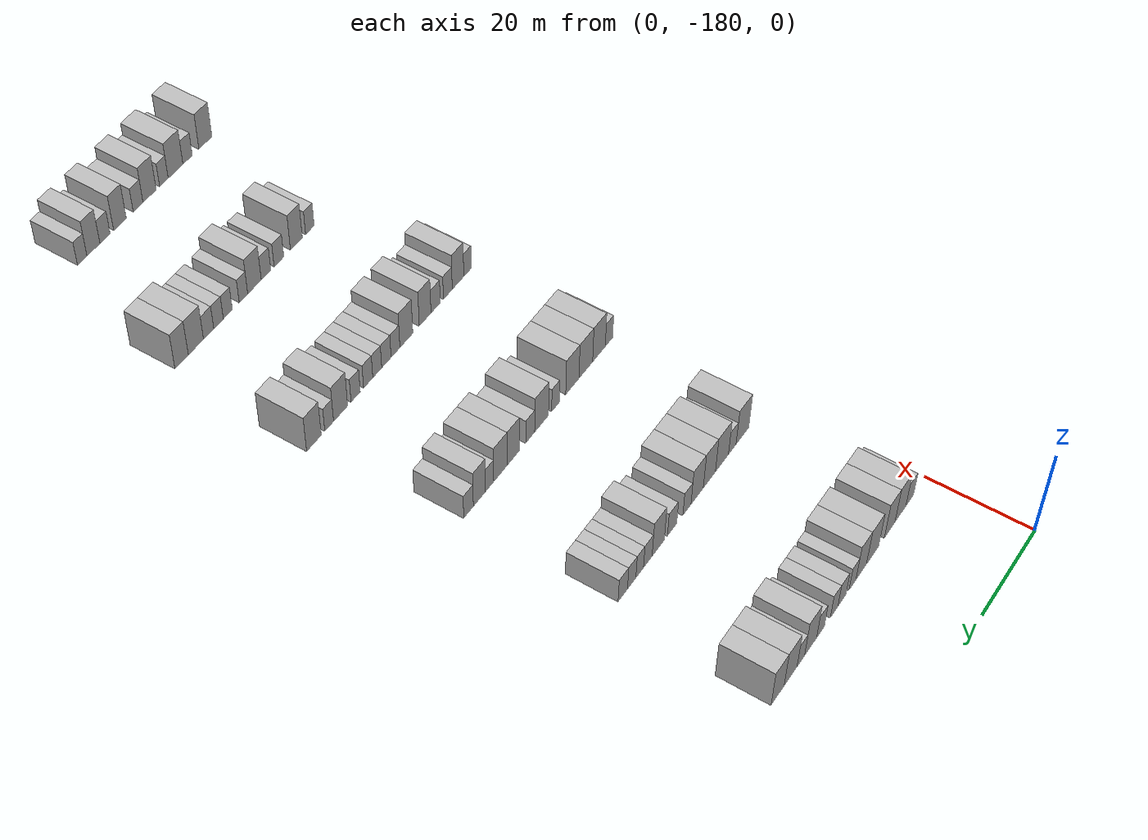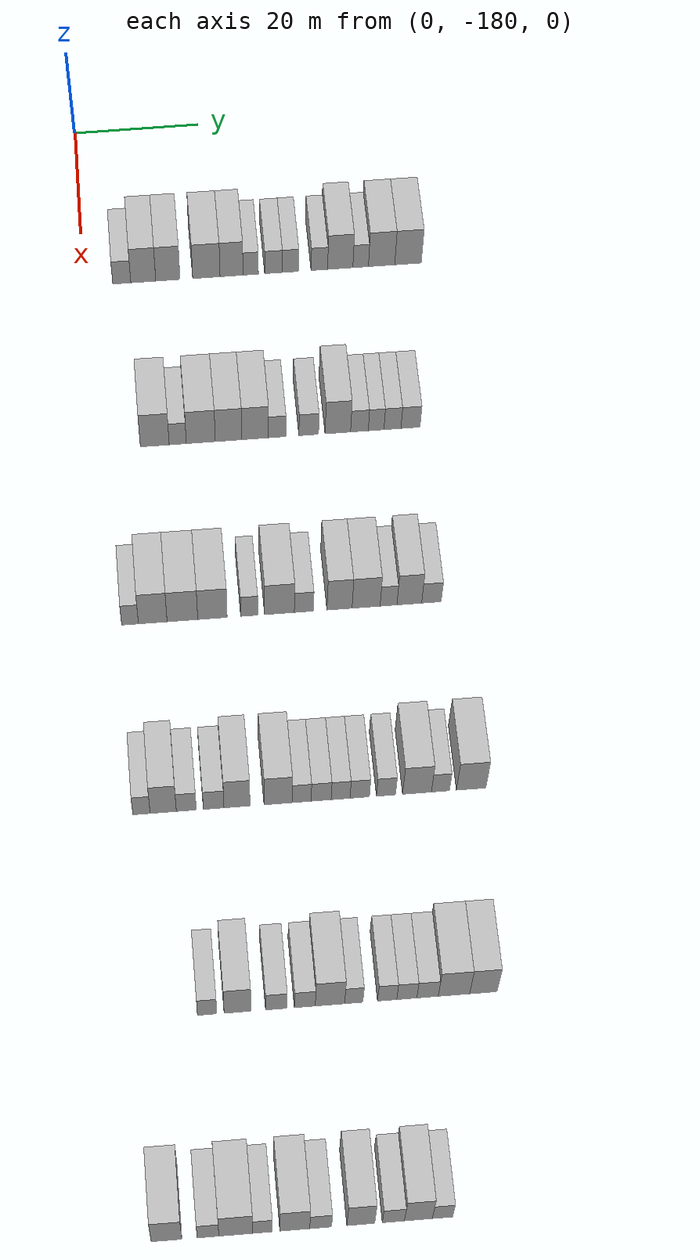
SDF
<sdf version="1.6">
 <world name="default">
  <model name="building_75">
   <static>1</static>
   <pose>25.0000 -174.0689 0 0.000000 0.000000 0.000000</pose>
   <link name="link">
    <pose>0 0 3.00 0 0 0</pose>
    <collision name="collision"><geometry><box><size>10.0000 2.8303 6.0000</size></box></geometry></collision>
    <visual name="visual">
     <cast_shadows>0</cast_shadows>
     <geometry><box><size>10.0000 2.8303 6.0000</size></box></geometry>
     <material>
      <script>
       <uri>model://HANNAS_wall/materials/scripts</uri>
       <uri>model://HANNAS_wall/materials/textures</uri>
       <name>vrc/HANNAS_wall</name>
      </script>
     </material>
    </visual>
   </link>
  </model>
  <model name="building_76">
   <static>1</static>
   <pose>25.0000 -170.6908 0 0.000000 0.000000 0.000000</pose>
   <link name="link">
    <pose>0 0 4.50 0 0 0</pose>
    <collision name="collision"><geometry><box><size>10.0000 3.9259 9.0000</size></box></geometry></collision>
    <visual name="visual">
     <cast_shadows>0</cast_shadows>
     <geometry><box><size>10.0000 3.9259 9.0000</size></box></geometry>
     <material>
      <script>
       <uri>model://HANNAS_wall/materials/scripts</uri>
       <uri>model://HANNAS_wall/materials/textures</uri>
       <name>vrc/HANNAS_wall</name>
      </script>
     </material>
    </visual>
   </link>
  </model>
  <model name="building_77">
   <static>1</static>
   <pose>25.0000 -166.8234 0 0.000000 0.000000 0.000000</pose>
   <link name="link">
    <pose>0 0 4.50 0 0 0</pose>
    <collision name="collision"><geometry><box><size>10.0000 3.8088 9.0000</size></box></geometry></collision>
    <visual name="visual">
     <cast_shadows>0</cast_shadows>
     <geometry><box><size>10.0000 3.8088 9.0000</size></box></geometry>
     <material>
      <script>
       <uri>model://HANNAS_wall/materials/scripts</uri>
       <uri>model://HANNAS_wall/materials/textures</uri>
       <name>vrc/HANNAS_wall</name>
      </script>
     </material>
    </visual>
   </link>
  </model>
  <model name="building_78">
   <static>1</static>
   <pose>25.0000 -160.7674 0 0.000000 0.000000 0.000000</pose>
   <link name="link">
    <pose>0 0 4.50 0 0 0</pose>
    <collision name="collision"><geometry><box><size>10.0000 4.3032 9.0000</size></box></geometry></collision>
    <visual name="visual">
     <cast_shadows>0</cast_shadows>
     <geometry><box><size>10.0000 4.3032 9.0000</size></box></geometry>
     <material>
      <script>
       <uri>model://HANNAS_wall/materials/scripts</uri>
       <uri>model://HANNAS_wall/materials/textures</uri>
       <name>vrc/HANNAS_wall</name>
      </script>
     </material>
    </visual>
   </link>
  </model>
  <model name="building_79">
   <static>1</static>
   <pose>25.0000 -156.8039 0 0.000000 0.000000 0.000000</pose>
   <link name="link">
    <pose>0 0 4.50 0 0 0</pose>
    <collision name="collision"><geometry><box><size>10.0000 3.6237 9.0000</size></box></geometry></collision>
    <visual name="visual">
     <cast_shadows>0</cast_shadows>
     <geometry><box><size>10.0000 3.6237 9.0000</size></box></geometry>
     <material>
      <script>
       <uri>model://HANNAS_wall/materials/scripts</uri>
       <uri>model://HANNAS_wall/materials/textures</uri>
       <name>vrc/HANNAS_wall</name>
      </script>
     </material>
    </visual>
   </link>
  </model>
  <model name="building_80">
   <static>1</static>
   <pose>25.0000 -153.7804 0 0.000000 0.000000 0.000000</pose>
   <link name="link">
    <pose>0 0 3.00 0 0 0</pose>
    <collision name="collision"><geometry><box><size>10.0000 2.4234 6.0000</size></box></geometry></collision>
    <visual name="visual">
     <cast_shadows>0</cast_shadows>
     <geometry><box><size>10.0000 2.4234 6.0000</size></box></geometry>
     <material>
      <script>
       <uri>model://HANNAS_wall/materials/scripts</uri>
       <uri>model://HANNAS_wall/materials/textures</uri>
       <name>vrc/HANNAS_wall</name>
      </script>
     </material>
    </visual>
   </link>
  </model>
  <model name="building_81">
   <static>1</static>
   <pose>25.0000 -150.1836 0 0.000000 0.000000 0.000000</pose>
   <link name="link">
    <pose>0 0 3.00 0 0 0</pose>
    <collision name="collision"><geometry><box><size>10.0000 2.7703 6.0000</size></box></geometry></collision>
    <visual name="visual">
     <cast_shadows>0</cast_shadows>
     <geometry><box><size>10.0000 2.7703 6.0000</size></box></geometry>
     <material>
      <script>
       <uri>model://HANNAS_wall/materials/scripts</uri>
       <uri>model://HANNAS_wall/materials/textures</uri>
       <name>vrc/HANNAS_wall</name>
      </script>
     </material>
    </visual>
   </link>
  </model>
  <model name="building_82">
   <static>1</static>
   <pose>25.0000 -147.5221 0 0.000000 0.000000 0.000000</pose>
   <link name="link">
    <pose>0 0 3.00 0 0 0</pose>
    <collision name="collision"><geometry><box><size>10.0000 2.5527 6.0000</size></box></geometry></collision>
    <visual name="visual">
     <cast_shadows>0</cast_shadows>
     <geometry><box><size>10.0000 2.5527 6.0000</size></box></geometry>
     <material>
      <script>
       <uri>model://HANNAS_wall/materials/scripts</uri>
       <uri>model://HANNAS_wall/materials/textures</uri>
       <name>vrc/HANNAS_wall</name>
      </script>
     </material>
    </visual>
   </link>
  </model>
  <model name="building_83">
   <static>1</static>
   <pose>25.0000 -142.9485 0 0.000000 0.000000 0.000000</pose>
   <link name="link">
    <pose>0 0 3.00 0 0 0</pose>
    <collision name="collision"><geometry><box><size>10.0000 2.5945 6.0000</size></box></geometry></collision>
    <visual name="visual">
     <cast_shadows>0</cast_shadows>
     <geometry><box><size>10.0000 2.5945 6.0000</size></box></geometry>
     <material>
      <script>
       <uri>model://HANNAS_wall/materials/scripts</uri>
       <uri>model://HANNAS_wall/materials/textures</uri>
       <name>vrc/HANNAS_wall</name>
      </script>
     </material>
    </visual>
   </link>
  </model>
  <model name="building_84">
   <static>1</static>
   <pose>25.0000 -139.6489 0 0.000000 0.000000 0.000000</pose>
   <link name="link">
    <pose>0 0 4.50 0 0 0</pose>
    <collision name="collision"><geometry><box><size>10.0000 4.0047 9.0000</size></box></geometry></collision>
    <visual name="visual">
     <cast_shadows>0</cast_shadows>
     <geometry><box><size>10.0000 4.0047 9.0000</size></box></geometry>
     <material>
      <script>
       <uri>model://HANNAS_wall/materials/scripts</uri>
       <uri>model://HANNAS_wall/materials/textures</uri>
       <name>vrc/HANNAS_wall</name>
      </script>
     </material>
    </visual>
   </link>
  </model>
  <model name="building_85">
   <static>1</static>
   <pose>25.0000 -136.4168 0 0.000000 0.000000 0.000000</pose>
   <link name="link">
    <pose>0 0 3.00 0 0 0</pose>
    <collision name="collision"><geometry><box><size>10.0000 2.4595 6.0000</size></box></geometry></collision>
    <visual name="visual">
     <cast_shadows>0</cast_shadows>
     <geometry><box><size>10.0000 2.4595 6.0000</size></box></geometry>
     <material>
      <script>
       <uri>model://HANNAS_wall/materials/scripts</uri>
       <uri>model://HANNAS_wall/materials/textures</uri>
       <name>vrc/HANNAS_wall</name>
      </script>
     </material>
    </visual>
   </link>
  </model>
  <model name="building_86">
   <static>1</static>
   <pose>25.0000 -133.1045 0 0.000000 0.000000 0.000000</pose>
   <link name="link">
    <pose>0 0 4.50 0 0 0</pose>
    <collision name="collision"><geometry><box><size>10.0000 4.1651 9.0000</size></box></geometry></collision>
    <visual name="visual">
     <cast_shadows>0</cast_shadows>
     <geometry><box><size>10.0000 4.1651 9.0000</size></box></geometry>
     <material>
      <script>
       <uri>model://HANNAS_wall/materials/scripts</uri>
       <uri>model://HANNAS_wall/materials/textures</uri>
       <name>vrc/HANNAS_wall</name>
      </script>
     </material>
    </visual>
   </link>
  </model>
  <model name="building_87">
   <static>1</static>
   <pose>25.0000 -128.9225 0 0.000000 0.000000 0.000000</pose>
   <link name="link">
    <pose>0 0 4.50 0 0 0</pose>
    <collision name="collision"><geometry><box><size>10.0000 4.1990 9.0000</size></box></geometry></collision>
    <visual name="visual">
     <cast_shadows>0</cast_shadows>
     <geometry><box><size>10.0000 4.1990 9.0000</size></box></geometry>
     <material>
      <script>
       <uri>model://HANNAS_wall/materials/scripts</uri>
       <uri>model://HANNAS_wall/materials/textures</uri>
       <name>vrc/HANNAS_wall</name>
      </script>
     </material>
    </visual>
   </link>
  </model>
  <model name="building_290">
   <static>1</static>
   <pose>55.0000 -170.7391 0 0.000000 0.000000 0.000000</pose>
   <link name="link">
    <pose>0 0 4.50 0 0 0</pose>
    <collision name="collision"><geometry><box><size>10.0000 4.3641 9.0000</size></box></geometry></collision>
    <visual name="visual">
     <cast_shadows>0</cast_shadows>
     <geometry><box><size>10.0000 4.3641 9.0000</size></box></geometry>
     <material>
      <script>
       <uri>model://HANNAS_wall/materials/scripts</uri>
       <uri>model://HANNAS_wall/materials/textures</uri>
       <name>vrc/HANNAS_wall</name>
      </script>
     </material>
    </visual>
   </link>
  </model>
  <model name="building_291">
   <static>1</static>
   <pose>55.0000 -167.2575 0 0.000000 0.000000 0.000000</pose>
   <link name="link">
    <pose>0 0 3.00 0 0 0</pose>
    <collision name="collision"><geometry><box><size>10.0000 2.5992 6.0000</size></box></geometry></collision>
    <visual name="visual">
     <cast_shadows>0</cast_shadows>
     <geometry><box><size>10.0000 2.5992 6.0000</size></box></geometry>
     <material>
      <script>
       <uri>model://HANNAS_wall/materials/scripts</uri>
       <uri>model://HANNAS_wall/materials/textures</uri>
       <name>vrc/HANNAS_wall</name>
      </script>
     </material>
    </visual>
   </link>
  </model>
  <model name="building_292">
   <static>1</static>
   <pose>55.0000 -163.7543 0 0.000000 0.000000 0.000000</pose>
   <link name="link">
    <pose>0 0 4.50 0 0 0</pose>
    <collision name="collision"><geometry><box><size>10.0000 4.4072 9.0000</size></box></geometry></collision>
    <visual name="visual">
     <cast_shadows>0</cast_shadows>
     <geometry><box><size>10.0000 4.4072 9.0000</size></box></geometry>
     <material>
      <script>
       <uri>model://HANNAS_wall/materials/scripts</uri>
       <uri>model://HANNAS_wall/materials/textures</uri>
       <name>vrc/HANNAS_wall</name>
      </script>
     </material>
    </visual>
   </link>
  </model>
  <model name="building_293">
   <static>1</static>
   <pose>55.0000 -159.5313 0 0.000000 0.000000 0.000000</pose>
   <link name="link">
    <pose>0 0 4.50 0 0 0</pose>
    <collision name="collision"><geometry><box><size>10.0000 4.0389 9.0000</size></box></geometry></collision>
    <visual name="visual">
     <cast_shadows>0</cast_shadows>
     <geometry><box><size>10.0000 4.0389 9.0000</size></box></geometry>
     <material>
      <script>
       <uri>model://HANNAS_wall/materials/scripts</uri>
       <uri>model://HANNAS_wall/materials/textures</uri>
       <name>vrc/HANNAS_wall</name>
      </script>
     </material>
    </visual>
   </link>
  </model>
  <model name="building_294">
   <static>1</static>
   <pose>55.0000 -155.4770 0 0.000000 0.000000 0.000000</pose>
   <link name="link">
    <pose>0 0 4.50 0 0 0</pose>
    <collision name="collision"><geometry><box><size>10.0000 4.0696 9.0000</size></box></geometry></collision>
    <visual name="visual">
     <cast_shadows>0</cast_shadows>
     <geometry><box><size>10.0000 4.0696 9.0000</size></box></geometry>
     <material>
      <script>
       <uri>model://HANNAS_wall/materials/scripts</uri>
       <uri>model://HANNAS_wall/materials/textures</uri>
       <name>vrc/HANNAS_wall</name>
      </script>
     </material>
    </visual>
   </link>
  </model>
  <model name="building_295">
   <static>1</static>
   <pose>55.0000 -152.1256 0 0.000000 0.000000 0.000000</pose>
   <link name="link">
    <pose>0 0 3.00 0 0 0</pose>
    <collision name="collision"><geometry><box><size>10.0000 2.6332 6.0000</size></box></geometry></collision>
    <visual name="visual">
     <cast_shadows>0</cast_shadows>
     <geometry><box><size>10.0000 2.6332 6.0000</size></box></geometry>
     <material>
      <script>
       <uri>model://HANNAS_wall/materials/scripts</uri>
       <uri>model://HANNAS_wall/materials/textures</uri>
       <name>vrc/HANNAS_wall</name>
      </script>
     </material>
    </visual>
   </link>
  </model>
  <model name="building_296">
   <static>1</static>
   <pose>55.0000 -147.3127 0 0.000000 0.000000 0.000000</pose>
   <link name="link">
    <pose>0 0 3.00 0 0 0</pose>
    <collision name="collision"><geometry><box><size>10.0000 2.9927 6.0000</size></box></geometry></collision>
    <visual name="visual">
     <cast_shadows>0</cast_shadows>
     <geometry><box><size>10.0000 2.9927 6.0000</size></box></geometry>
     <material>
      <script>
       <uri>model://HANNAS_wall/materials/scripts</uri>
       <uri>model://HANNAS_wall/materials/textures</uri>
       <name>vrc/HANNAS_wall</name>
      </script>
     </material>
    </visual>
   </link>
  </model>
  <model name="building_297">
   <static>1</static>
   <pose>55.0000 -142.8685 0 0.000000 0.000000 0.000000</pose>
   <link name="link">
    <pose>0 0 4.50 0 0 0</pose>
    <collision name="collision"><geometry><box><size>10.0000 3.8957 9.0000</size></box></geometry></collision>
    <visual name="visual">
     <cast_shadows>0</cast_shadows>
     <geometry><box><size>10.0000 3.8957 9.0000</size></box></geometry>
     <material>
      <script>
       <uri>model://HANNAS_wall/materials/scripts</uri>
       <uri>model://HANNAS_wall/materials/textures</uri>
       <name>vrc/HANNAS_wall</name>
      </script>
     </material>
    </visual>
   </link>
  </model>
  <model name="building_298">
   <static>1</static>
   <pose>55.0000 -139.5719 0 0.000000 0.000000 0.000000</pose>
   <link name="link">
    <pose>0 0 3.00 0 0 0</pose>
    <collision name="collision"><geometry><box><size>10.0000 2.6973 6.0000</size></box></geometry></collision>
    <visual name="visual">
     <cast_shadows>0</cast_shadows>
     <geometry><box><size>10.0000 2.6973 6.0000</size></box></geometry>
     <material>
      <script>
       <uri>model://HANNAS_wall/materials/scripts</uri>
       <uri>model://HANNAS_wall/materials/textures</uri>
       <name>vrc/HANNAS_wall</name>
      </script>
     </material>
    </visual>
   </link>
  </model>
  <model name="building_299">
   <static>1</static>
   <pose>55.0000 -137.0229 0 0.000000 0.000000 0.000000</pose>
   <link name="link">
    <pose>0 0 3.00 0 0 0</pose>
    <collision name="collision"><geometry><box><size>10.0000 2.4008 6.0000</size></box></geometry></collision>
    <visual name="visual">
     <cast_shadows>0</cast_shadows>
     <geometry><box><size>10.0000 2.4008 6.0000</size></box></geometry>
     <material>
      <script>
       <uri>model://HANNAS_wall/materials/scripts</uri>
       <uri>model://HANNAS_wall/materials/textures</uri>
       <name>vrc/HANNAS_wall</name>
      </script>
     </material>
    </visual>
   </link>
  </model>
  <model name="building_300">
   <static>1</static>
   <pose>55.0000 -134.5228 0 0.000000 0.000000 0.000000</pose>
   <link name="link">
    <pose>0 0 3.00 0 0 0</pose>
    <collision name="collision"><geometry><box><size>10.0000 2.5994 6.0000</size></box></geometry></collision>
    <visual name="visual">
     <cast_shadows>0</cast_shadows>
     <geometry><box><size>10.0000 2.5994 6.0000</size></box></geometry>
     <material>
      <script>
       <uri>model://HANNAS_wall/materials/scripts</uri>
       <uri>model://HANNAS_wall/materials/textures</uri>
       <name>vrc/HANNAS_wall</name>
      </script>
     </material>
    </visual>
   </link>
  </model>
  <model name="building_301">
   <static>1</static>
   <pose>55.0000 -131.7654 0 0.000000 0.000000 0.000000</pose>
   <link name="link">
    <pose>0 0 3.00 0 0 0</pose>
    <collision name="collision"><geometry><box><size>10.0000 2.9154 6.0000</size></box></geometry></collision>
    <visual name="visual">
     <cast_shadows>0</cast_shadows>
     <geometry><box><size>10.0000 2.9154 6.0000</size></box></geometry>
     <material>
      <script>
       <uri>model://HANNAS_wall/materials/scripts</uri>
       <uri>model://HANNAS_wall/materials/textures</uri>
       <name>vrc/HANNAS_wall</name>
      </script>
     </material>
    </visual>
   </link>
  </model>
  <model name="building_521">
   <static>1</static>
   <pose>85.0000 -176.2132 0 0.000000 0.000000 0.000000</pose>
   <link name="link">
    <pose>0 0 3.00 0 0 0</pose>
    <collision name="collision"><geometry><box><size>10.0000 2.4547 6.0000</size></box></geometry></collision>
    <visual name="visual">
     <cast_shadows>0</cast_shadows>
     <geometry><box><size>10.0000 2.4547 6.0000</size></box></geometry>
     <material>
      <script>
       <uri>model://HANNAS_wall/materials/scripts</uri>
       <uri>model://HANNAS_wall/materials/textures</uri>
       <name>vrc/HANNAS_wall</name>
      </script>
     </material>
    </visual>
   </link>
  </model>
  <model name="building_522">
   <static>1</static>
   <pose>85.0000 -172.8863 0 0.000000 0.000000 0.000000</pose>
   <link name="link">
    <pose>0 0 4.50 0 0 0</pose>
    <collision name="collision"><geometry><box><size>10.0000 4.1990 9.0000</size></box></geometry></collision>
    <visual name="visual">
     <cast_shadows>0</cast_shadows>
     <geometry><box><size>10.0000 4.1990 9.0000</size></box></geometry>
     <material>
      <script>
       <uri>model://HANNAS_wall/materials/scripts</uri>
       <uri>model://HANNAS_wall/materials/textures</uri>
       <name>vrc/HANNAS_wall</name>
      </script>
     </material>
    </visual>
   </link>
  </model>
  <model name="building_523">
   <static>1</static>
   <pose>85.0000 -168.5421 0 0.000000 0.000000 0.000000</pose>
   <link name="link">
    <pose>0 0 4.50 0 0 0</pose>
    <collision name="collision"><geometry><box><size>10.0000 4.4895 9.0000</size></box></geometry></collision>
    <visual name="visual">
     <cast_shadows>0</cast_shadows>
     <geometry><box><size>10.0000 4.4895 9.0000</size></box></geometry>
     <material>
      <script>
       <uri>model://HANNAS_wall/materials/scripts</uri>
       <uri>model://HANNAS_wall/materials/textures</uri>
       <name>vrc/HANNAS_wall</name>
      </script>
     </material>
    </visual>
   </link>
  </model>
  <model name="building_524">
   <static>1</static>
   <pose>85.0000 -164.1462 0 0.000000 0.000000 0.000000</pose>
   <link name="link">
    <pose>0 0 4.50 0 0 0</pose>
    <collision name="collision"><geometry><box><size>10.0000 4.3022 9.0000</size></box></geometry></collision>
    <visual name="visual">
     <cast_shadows>0</cast_shadows>
     <geometry><box><size>10.0000 4.3022 9.0000</size></box></geometry>
     <material>
      <script>
       <uri>model://HANNAS_wall/materials/scripts</uri>
       <uri>model://HANNAS_wall/materials/textures</uri>
       <name>vrc/HANNAS_wall</name>
      </script>
     </material>
    </visual>
   </link>
  </model>
  <model name="building_525">
   <static>1</static>
   <pose>85.0000 -158.7424 0 0.000000 0.000000 0.000000</pose>
   <link name="link">
    <pose>0 0 3.00 0 0 0</pose>
    <collision name="collision"><geometry><box><size>10.0000 2.5054 6.0000</size></box></geometry></collision>
    <visual name="visual">
     <cast_shadows>0</cast_shadows>
     <geometry><box><size>10.0000 2.5054 6.0000</size></box></geometry>
     <material>
      <script>
       <uri>model://HANNAS_wall/materials/scripts</uri>
       <uri>model://HANNAS_wall/materials/textures</uri>
       <name>vrc/HANNAS_wall</name>
      </script>
     </material>
    </visual>
   </link>
  </model>
  <model name="building_526">
   <static>1</static>
   <pose>85.0000 -154.3054 0 0.000000 0.000000 0.000000</pose>
   <link name="link">
    <pose>0 0 4.50 0 0 0</pose>
    <collision name="collision"><geometry><box><size>10.0000 4.3687 9.0000</size></box></geometry></collision>
    <visual name="visual">
     <cast_shadows>0</cast_shadows>
     <geometry><box><size>10.0000 4.3687 9.0000</size></box></geometry>
     <material>
      <script>
       <uri>model://HANNAS_wall/materials/scripts</uri>
       <uri>model://HANNAS_wall/materials/textures</uri>
       <name>vrc/HANNAS_wall</name>
      </script>
     </material>
    </visual>
   </link>
  </model>
  <model name="building_527">
   <static>1</static>
   <pose>85.0000 -150.7202 0 0.000000 0.000000 0.000000</pose>
   <link name="link">
    <pose>0 0 3.00 0 0 0</pose>
    <collision name="collision"><geometry><box><size>10.0000 2.8018 6.0000</size></box></geometry></collision>
    <visual name="visual">
     <cast_shadows>0</cast_shadows>
     <geometry><box><size>10.0000 2.8018 6.0000</size></box></geometry>
     <material>
      <script>
       <uri>model://HANNAS_wall/materials/scripts</uri>
       <uri>model://HANNAS_wall/materials/textures</uri>
       <name>vrc/HANNAS_wall</name>
      </script>
     </material>
    </visual>
   </link>
  </model>
  <model name="building_528">
   <static>1</static>
   <pose>85.0000 -145.4725 0 0.000000 0.000000 0.000000</pose>
   <link name="link">
    <pose>0 0 4.50 0 0 0</pose>
    <collision name="collision"><geometry><box><size>10.0000 3.6936 9.0000</size></box></geometry></collision>
    <visual name="visual">
     <cast_shadows>0</cast_shadows>
     <geometry><box><size>10.0000 3.6936 9.0000</size></box></geometry>
     <material>
      <script>
       <uri>model://HANNAS_wall/materials/scripts</uri>
       <uri>model://HANNAS_wall/materials/textures</uri>
       <name>vrc/HANNAS_wall</name>
      </script>
     </material>
    </visual>
   </link>
  </model>
  <model name="building_529">
   <static>1</static>
   <pose>85.0000 -141.5602 0 0.000000 0.000000 0.000000</pose>
   <link name="link">
    <pose>0 0 4.50 0 0 0</pose>
    <collision name="collision"><geometry><box><size>10.0000 4.1311 9.0000</size></box></geometry></collision>
    <visual name="visual">
     <cast_shadows>0</cast_shadows>
     <geometry><box><size>10.0000 4.1311 9.0000</size></box></geometry>
     <material>
      <script>
       <uri>model://HANNAS_wall/materials/scripts</uri>
       <uri>model://HANNAS_wall/materials/textures</uri>
       <name>vrc/HANNAS_wall</name>
      </script>
     </material>
    </visual>
   </link>
  </model>
  <model name="building_530">
   <static>1</static>
   <pose>85.0000 -138.2527 0 0.000000 0.000000 0.000000</pose>
   <link name="link">
    <pose>0 0 3.00 0 0 0</pose>
    <collision name="collision"><geometry><box><size>10.0000 2.4838 6.0000</size></box></geometry></collision>
    <visual name="visual">
     <cast_shadows>0</cast_shadows>
     <geometry><box><size>10.0000 2.4838 6.0000</size></box></geometry>
     <material>
      <script>
       <uri>model://HANNAS_wall/materials/scripts</uri>
       <uri>model://HANNAS_wall/materials/textures</uri>
       <name>vrc/HANNAS_wall</name>
      </script>
     </material>
    </visual>
   </link>
  </model>
  <model name="building_531">
   <static>1</static>
   <pose>85.0000 -135.1868 0 0.000000 0.000000 0.000000</pose>
   <link name="link">
    <pose>0 0 4.50 0 0 0</pose>
    <collision name="collision"><geometry><box><size>10.0000 3.6479 9.0000</size></box></geometry></collision>
    <visual name="visual">
     <cast_shadows>0</cast_shadows>
     <geometry><box><size>10.0000 3.6479 9.0000</size></box></geometry>
     <material>
      <script>
       <uri>model://HANNAS_wall/materials/scripts</uri>
       <uri>model://HANNAS_wall/materials/textures</uri>
       <name>vrc/HANNAS_wall</name>
      </script>
     </material>
    </visual>
   </link>
  </model>
  <model name="building_532">
   <static>1</static>
   <pose>85.0000 -131.9262 0 0.000000 0.000000 0.000000</pose>
   <link name="link">
    <pose>0 0 3.00 0 0 0</pose>
    <collision name="collision"><geometry><box><size>10.0000 2.8733 6.0000</size></box></geometry></collision>
    <visual name="visual">
     <cast_shadows>0</cast_shadows>
     <geometry><box><size>10.0000 2.8733 6.0000</size></box></geometry>
     <material>
      <script>
       <uri>model://HANNAS_wall/materials/scripts</uri>
       <uri>model://HANNAS_wall/materials/textures</uri>
       <name>vrc/HANNAS_wall</name>
      </script>
     </material>
    </visual>
   </link>
  </model>
  <model name="building_748">
   <static>1</static>
   <pose>115.0000 -176.3181 0 0.000000 0.000000 0.000000</pose>
   <link name="link">
    <pose>0 0 3.00 0 0 0</pose>
    <collision name="collision"><geometry><box><size>10.0000 2.4356 6.0000</size></box></geometry></collision>
    <visual name="visual">
     <cast_shadows>0</cast_shadows>
     <geometry><box><size>10.0000 2.4356 6.0000</size></box></geometry>
     <material>
      <script>
       <uri>model://HANNAS_wall/materials/scripts</uri>
       <uri>model://HANNAS_wall/materials/textures</uri>
       <name>vrc/HANNAS_wall</name>
      </script>
     </material>
    </visual>
   </link>
  </model>
  <model name="building_749">
   <static>1</static>
   <pose>115.0000 -173.2543 0 0.000000 0.000000 0.000000</pose>
   <link name="link">
    <pose>0 0 4.50 0 0 0</pose>
    <collision name="collision"><geometry><box><size>10.0000 3.6920 9.0000</size></box></geometry></collision>
    <visual name="visual">
     <cast_shadows>0</cast_shadows>
     <geometry><box><size>10.0000 3.6920 9.0000</size></box></geometry>
     <material>
      <script>
       <uri>model://HANNAS_wall/materials/scripts</uri>
       <uri>model://HANNAS_wall/materials/textures</uri>
       <name>vrc/HANNAS_wall</name>
      </script>
     </material>
    </visual>
   </link>
  </model>
  <model name="building_750">
   <static>1</static>
   <pose>115.0000 -170.0038 0 0.000000 0.000000 0.000000</pose>
   <link name="link">
    <pose>0 0 3.00 0 0 0</pose>
    <collision name="collision"><geometry><box><size>10.0000 2.8092 6.0000</size></box></geometry></collision>
    <visual name="visual">
     <cast_shadows>0</cast_shadows>
     <geometry><box><size>10.0000 2.8092 6.0000</size></box></geometry>
     <material>
      <script>
       <uri>model://HANNAS_wall/materials/scripts</uri>
       <uri>model://HANNAS_wall/materials/textures</uri>
       <name>vrc/HANNAS_wall</name>
      </script>
     </material>
    </visual>
   </link>
  </model>
  <model name="building_751">
   <static>1</static>
   <pose>115.0000 -166.1439 0 0.000000 0.000000 0.000000</pose>
   <link name="link">
    <pose>0 0 3.00 0 0 0</pose>
    <collision name="collision"><geometry><box><size>10.0000 2.9105 6.0000</size></box></geometry></collision>
    <visual name="visual">
     <cast_shadows>0</cast_shadows>
     <geometry><box><size>10.0000 2.9105 6.0000</size></box></geometry>
     <material>
      <script>
       <uri>model://HANNAS_wall/materials/scripts</uri>
       <uri>model://HANNAS_wall/materials/textures</uri>
       <name>vrc/HANNAS_wall</name>
      </script>
     </material>
    </visual>
   </link>
  </model>
  <model name="building_752">
   <static>1</static>
   <pose>115.0000 -162.8537 0 0.000000 0.000000 0.000000</pose>
   <link name="link">
    <pose>0 0 4.50 0 0 0</pose>
    <collision name="collision"><geometry><box><size>10.0000 3.6699 9.0000</size></box></geometry></collision>
    <visual name="visual">
     <cast_shadows>0</cast_shadows>
     <geometry><box><size>10.0000 3.6699 9.0000</size></box></geometry>
     <material>
      <script>
       <uri>model://HANNAS_wall/materials/scripts</uri>
       <uri>model://HANNAS_wall/materials/textures</uri>
       <name>vrc/HANNAS_wall</name>
      </script>
     </material>
    </visual>
   </link>
  </model>
  <model name="building_753">
   <static>1</static>
   <pose>115.0000 -157.0368 0 0.000000 0.000000 0.000000</pose>
   <link name="link">
    <pose>0 0 4.50 0 0 0</pose>
    <collision name="collision"><geometry><box><size>10.0000 3.9639 9.0000</size></box></geometry></collision>
    <visual name="visual">
     <cast_shadows>0</cast_shadows>
     <geometry><box><size>10.0000 3.9639 9.0000</size></box></geometry>
     <material>
      <script>
       <uri>model://HANNAS_wall/materials/scripts</uri>
       <uri>model://HANNAS_wall/materials/textures</uri>
       <name>vrc/HANNAS_wall</name>
      </script>
     </material>
    </visual>
   </link>
  </model>
  <model name="building_754">
   <static>1</static>
   <pose>115.0000 -153.7051 0 0.000000 0.000000 0.000000</pose>
   <link name="link">
    <pose>0 0 3.00 0 0 0</pose>
    <collision name="collision"><geometry><box><size>10.0000 2.6995 6.0000</size></box></geometry></collision>
    <visual name="visual">
     <cast_shadows>0</cast_shadows>
     <geometry><box><size>10.0000 2.6995 6.0000</size></box></geometry>
     <material>
      <script>
       <uri>model://HANNAS_wall/materials/scripts</uri>
       <uri>model://HANNAS_wall/materials/textures</uri>
       <name>vrc/HANNAS_wall</name>
      </script>
     </material>
    </visual>
   </link>
  </model>
  <model name="building_755">
   <static>1</static>
   <pose>115.0000 -150.9364 0 0.000000 0.000000 0.000000</pose>
   <link name="link">
    <pose>0 0 3.00 0 0 0</pose>
    <collision name="collision"><geometry><box><size>10.0000 2.8380 6.0000</size></box></geometry></collision>
    <visual name="visual">
     <cast_shadows>0</cast_shadows>
     <geometry><box><size>10.0000 2.8380 6.0000</size></box></geometry>
     <material>
      <script>
       <uri>model://HANNAS_wall/materials/scripts</uri>
       <uri>model://HANNAS_wall/materials/textures</uri>
       <name>vrc/HANNAS_wall</name>
      </script>
     </material>
    </visual>
   </link>
  </model>
  <model name="building_756">
   <static>1</static>
   <pose>115.0000 -148.1772 0 0.000000 0.000000 0.000000</pose>
   <link name="link">
    <pose>0 0 3.00 0 0 0</pose>
    <collision name="collision"><geometry><box><size>10.0000 2.6804 6.0000</size></box></geometry></collision>
    <visual name="visual">
     <cast_shadows>0</cast_shadows>
     <geometry><box><size>10.0000 2.6804 6.0000</size></box></geometry>
     <material>
      <script>
       <uri>model://HANNAS_wall/materials/scripts</uri>
       <uri>model://HANNAS_wall/materials/textures</uri>
       <name>vrc/HANNAS_wall</name>
      </script>
     </material>
    </visual>
   </link>
  </model>
  <model name="building_757">
   <static>1</static>
   <pose>115.0000 -145.4646 0 0.000000 0.000000 0.000000</pose>
   <link name="link">
    <pose>0 0 3.00 0 0 0</pose>
    <collision name="collision"><geometry><box><size>10.0000 2.7448 6.0000</size></box></geometry></collision>
    <visual name="visual">
     <cast_shadows>0</cast_shadows>
     <geometry><box><size>10.0000 2.7448 6.0000</size></box></geometry>
     <material>
      <script>
       <uri>model://HANNAS_wall/materials/scripts</uri>
       <uri>model://HANNAS_wall/materials/textures</uri>
       <name>vrc/HANNAS_wall</name>
      </script>
     </material>
    </visual>
   </link>
  </model>
  <model name="building_758">
   <static>1</static>
   <pose>115.0000 -141.7344 0 0.000000 0.000000 0.000000</pose>
   <link name="link">
    <pose>0 0 3.00 0 0 0</pose>
    <collision name="collision"><geometry><box><size>10.0000 2.7155 6.0000</size></box></geometry></collision>
    <visual name="visual">
     <cast_shadows>0</cast_shadows>
     <geometry><box><size>10.0000 2.7155 6.0000</size></box></geometry>
     <material>
      <script>
       <uri>model://HANNAS_wall/materials/scripts</uri>
       <uri>model://HANNAS_wall/materials/textures</uri>
       <name>vrc/HANNAS_wall</name>
      </script>
     </material>
    </visual>
   </link>
  </model>
  <model name="building_759">
   <static>1</static>
   <pose>115.0000 -137.3256 0 0.000000 0.000000 0.000000</pose>
   <link name="link">
    <pose>0 0 4.50 0 0 0</pose>
    <collision name="collision"><geometry><box><size>10.0000 4.1022 9.0000</size></box></geometry></collision>
    <visual name="visual">
     <cast_shadows>0</cast_shadows>
     <geometry><box><size>10.0000 4.1022 9.0000</size></box></geometry>
     <material>
      <script>
       <uri>model://HANNAS_wall/materials/scripts</uri>
       <uri>model://HANNAS_wall/materials/textures</uri>
       <name>vrc/HANNAS_wall</name>
      </script>
     </material>
    </visual>
   </link>
  </model>
  <model name="building_760">
   <static>1</static>
   <pose>115.0000 -133.9955 0 0.000000 0.000000 0.000000</pose>
   <link name="link">
    <pose>0 0 3.00 0 0 0</pose>
    <collision name="collision"><geometry><box><size>10.0000 2.5580 6.0000</size></box></geometry></collision>
    <visual name="visual">
     <cast_shadows>0</cast_shadows>
     <geometry><box><size>10.0000 2.5580 6.0000</size></box></geometry>
     <material>
      <script>
       <uri>model://HANNAS_wall/materials/scripts</uri>
       <uri>model://HANNAS_wall/materials/textures</uri>
       <name>vrc/HANNAS_wall</name>
      </script>
     </material>
    </visual>
   </link>
  </model>
  <model name="building_761">
   <static>1</static>
   <pose>115.0000 -129.6216 0 0.000000 0.000000 0.000000</pose>
   <link name="link">
    <pose>0 0 4.50 0 0 0</pose>
    <collision name="collision"><geometry><box><size>10.0000 4.1897 9.0000</size></box></geometry></collision>
    <visual name="visual">
     <cast_shadows>0</cast_shadows>
     <geometry><box><size>10.0000 4.1897 9.0000</size></box></geometry>
     <material>
      <script>
       <uri>model://HANNAS_wall/materials/scripts</uri>
       <uri>model://HANNAS_wall/materials/textures</uri>
       <name>vrc/HANNAS_wall</name>
      </script>
     </material>
    </visual>
   </link>
  </model>
  <model name="building_984">
   <static>1</static>
   <pose>145.0000 -169.2057 0 0.000000 0.000000 0.000000</pose>
   <link name="link">
    <pose>0 0 3.00 0 0 0</pose>
    <collision name="collision"><geometry><box><size>10.0000 2.6181 6.0000</size></box></geometry></collision>
    <visual name="visual">
     <cast_shadows>0</cast_shadows>
     <geometry><box><size>10.0000 2.6181 6.0000</size></box></geometry>
     <material>
      <script>
       <uri>model://HANNAS_wall/materials/scripts</uri>
       <uri>model://HANNAS_wall/materials/textures</uri>
       <name>vrc/HANNAS_wall</name>
      </script>
     </material>
    </visual>
   </link>
  </model>
  <model name="building_985">
   <static>1</static>
   <pose>145.0000 -165.0762 0 0.000000 0.000000 0.000000</pose>
   <link name="link">
    <pose>0 0 4.50 0 0 0</pose>
    <collision name="collision"><geometry><box><size>10.0000 3.6409 9.0000</size></box></geometry></collision>
    <visual name="visual">
     <cast_shadows>0</cast_shadows>
     <geometry><box><size>10.0000 3.6409 9.0000</size></box></geometry>
     <material>
      <script>
       <uri>model://HANNAS_wall/materials/scripts</uri>
       <uri>model://HANNAS_wall/materials/textures</uri>
       <name>vrc/HANNAS_wall</name>
      </script>
     </material>
    </visual>
   </link>
  </model>
  <model name="building_986">
   <static>1</static>
   <pose>145.0000 -159.7997 0 0.000000 0.000000 0.000000</pose>
   <link name="link">
    <pose>0 0 3.00 0 0 0</pose>
    <collision name="collision"><geometry><box><size>10.0000 2.9121 6.0000</size></box></geometry></collision>
    <visual name="visual">
     <cast_shadows>0</cast_shadows>
     <geometry><box><size>10.0000 2.9121 6.0000</size></box></geometry>
     <material>
      <script>
       <uri>model://HANNAS_wall/materials/scripts</uri>
       <uri>model://HANNAS_wall/materials/textures</uri>
       <name>vrc/HANNAS_wall</name>
      </script>
     </material>
    </visual>
   </link>
  </model>
  <model name="building_987">
   <static>1</static>
   <pose>145.0000 -155.9171 0 0.000000 0.000000 0.000000</pose>
   <link name="link">
    <pose>0 0 3.00 0 0 0</pose>
    <collision name="collision"><geometry><box><size>10.0000 2.8531 6.0000</size></box></geometry></collision>
    <visual name="visual">
     <cast_shadows>0</cast_shadows>
     <geometry><box><size>10.0000 2.8531 6.0000</size></box></geometry>
     <material>
      <script>
       <uri>model://HANNAS_wall/materials/scripts</uri>
       <uri>model://HANNAS_wall/materials/textures</uri>
       <name>vrc/HANNAS_wall</name>
      </script>
     </material>
    </visual>
   </link>
  </model>
  <model name="building_988">
   <static>1</static>
   <pose>145.0000 -152.4908 0 0.000000 0.000000 0.000000</pose>
   <link name="link">
    <pose>0 0 4.50 0 0 0</pose>
    <collision name="collision"><geometry><box><size>10.0000 3.9994 9.0000</size></box></geometry></collision>
    <visual name="visual">
     <cast_shadows>0</cast_shadows>
     <geometry><box><size>10.0000 3.9994 9.0000</size></box></geometry>
     <material>
      <script>
       <uri>model://HANNAS_wall/materials/scripts</uri>
       <uri>model://HANNAS_wall/materials/textures</uri>
       <name>vrc/HANNAS_wall</name>
      </script>
     </material>
    </visual>
   </link>
  </model>
  <model name="building_989">
   <static>1</static>
   <pose>145.0000 -149.2451 0 0.000000 0.000000 0.000000</pose>
   <link name="link">
    <pose>0 0 3.00 0 0 0</pose>
    <collision name="collision"><geometry><box><size>10.0000 2.4920 6.0000</size></box></geometry></collision>
    <visual name="visual">
     <cast_shadows>0</cast_shadows>
     <geometry><box><size>10.0000 2.4920 6.0000</size></box></geometry>
     <material>
      <script>
       <uri>model://HANNAS_wall/materials/scripts</uri>
       <uri>model://HANNAS_wall/materials/textures</uri>
       <name>vrc/HANNAS_wall</name>
      </script>
     </material>
    </visual>
   </link>
  </model>
  <model name="building_990">
   <static>1</static>
   <pose>145.0000 -144.6900 0 0.000000 0.000000 0.000000</pose>
   <link name="link">
    <pose>0 0 3.00 0 0 0</pose>
    <collision name="collision"><geometry><box><size>10.0000 2.6183 6.0000</size></box></geometry></collision>
    <visual name="visual">
     <cast_shadows>0</cast_shadows>
     <geometry><box><size>10.0000 2.6183 6.0000</size></box></geometry>
     <material>
      <script>
       <uri>model://HANNAS_wall/materials/scripts</uri>
       <uri>model://HANNAS_wall/materials/textures</uri>
       <name>vrc/HANNAS_wall</name>
      </script>
     </material>
    </visual>
   </link>
  </model>
  <model name="building_991">
   <static>1</static>
   <pose>145.0000 -142.0084 0 0.000000 0.000000 0.000000</pose>
   <link name="link">
    <pose>0 0 3.00 0 0 0</pose>
    <collision name="collision"><geometry><box><size>10.0000 2.7448 6.0000</size></box></geometry></collision>
    <visual name="visual">
     <cast_shadows>0</cast_shadows>
     <geometry><box><size>10.0000 2.7448 6.0000</size></box></geometry>
     <material>
      <script>
       <uri>model://HANNAS_wall/materials/scripts</uri>
       <uri>model://HANNAS_wall/materials/textures</uri>
       <name>vrc/HANNAS_wall</name>
      </script>
     </material>
    </visual>
   </link>
  </model>
  <model name="building_992">
   <static>1</static>
   <pose>145.0000 -139.1711 0 0.000000 0.000000 0.000000</pose>
   <link name="link">
    <pose>0 0 3.00 0 0 0</pose>
    <collision name="collision"><geometry><box><size>10.0000 2.9298 6.0000</size></box></geometry></collision>
    <visual name="visual">
     <cast_shadows>0</cast_shadows>
     <geometry><box><size>10.0000 2.9298 6.0000</size></box></geometry>
     <material>
      <script>
       <uri>model://HANNAS_wall/materials/scripts</uri>
       <uri>model://HANNAS_wall/materials/textures</uri>
       <name>vrc/HANNAS_wall</name>
      </script>
     </material>
    </visual>
   </link>
  </model>
  <model name="building_993">
   <static>1</static>
   <pose>145.0000 -135.5563 0 0.000000 0.000000 0.000000</pose>
   <link name="link">
    <pose>0 0 4.50 0 0 0</pose>
    <collision name="collision"><geometry><box><size>10.0000 4.2998 9.0000</size></box></geometry></collision>
    <visual name="visual">
     <cast_shadows>0</cast_shadows>
     <geometry><box><size>10.0000 4.2998 9.0000</size></box></geometry>
     <material>
      <script>
       <uri>model://HANNAS_wall/materials/scripts</uri>
       <uri>model://HANNAS_wall/materials/textures</uri>
       <name>vrc/HANNAS_wall</name>
      </script>
     </material>
    </visual>
   </link>
  </model>
  <model name="building_994">
   <static>1</static>
   <pose>145.0000 -131.5270 0 0.000000 0.000000 0.000000</pose>
   <link name="link">
    <pose>0 0 4.50 0 0 0</pose>
    <collision name="collision"><geometry><box><size>10.0000 3.7588 9.0000</size></box></geometry></collision>
    <visual name="visual">
     <cast_shadows>0</cast_shadows>
     <geometry><box><size>10.0000 3.7588 9.0000</size></box></geometry>
     <material>
      <script>
       <uri>model://HANNAS_wall/materials/scripts</uri>
       <uri>model://HANNAS_wall/materials/textures</uri>
       <name>vrc/HANNAS_wall</name>
      </script>
     </material>
    </visual>
   </link>
  </model>
  <model name="building_1206">
   <static>1</static>
   <pose>175.0000 -176.6366 0 0.000000 0.000000 0.000000</pose>
   <link name="link">
    <pose>0 0 4.50 0 0 0</pose>
    <collision name="collision"><geometry><box><size>10.0000 3.9955 9.0000</size></box></geometry></collision>
    <visual name="visual">
     <cast_shadows>0</cast_shadows>
     <geometry><box><size>10.0000 3.9955 9.0000</size></box></geometry>
     <material>
      <script>
       <uri>model://HANNAS_wall/materials/scripts</uri>
       <uri>model://HANNAS_wall/materials/textures</uri>
       <name>vrc/HANNAS_wall</name>
      </script>
     </material>
    </visual>
   </link>
  </model>
  <model name="building_1207">
   <static>1</static>
   <pose>175.0000 -171.2276 0 0.000000 0.000000 0.000000</pose>
   <link name="link">
    <pose>0 0 3.00 0 0 0</pose>
    <collision name="collision"><geometry><box><size>10.0000 2.8224 6.0000</size></box></geometry></collision>
    <visual name="visual">
     <cast_shadows>0</cast_shadows>
     <geometry><box><size>10.0000 2.8224 6.0000</size></box></geometry>
     <material>
      <script>
       <uri>model://HANNAS_wall/materials/scripts</uri>
       <uri>model://HANNAS_wall/materials/textures</uri>
       <name>vrc/HANNAS_wall</name>
      </script>
     </material>
    </visual>
   </link>
  </model>
  <model name="building_1208">
   <static>1</static>
   <pose>175.0000 -167.6048 0 0.000000 0.000000 0.000000</pose>
   <link name="link">
    <pose>0 0 4.50 0 0 0</pose>
    <collision name="collision"><geometry><box><size>10.0000 4.4232 9.0000</size></box></geometry></collision>
    <visual name="visual">
     <cast_shadows>0</cast_shadows>
     <geometry><box><size>10.0000 4.4232 9.0000</size></box></geometry>
     <material>
      <script>
       <uri>model://HANNAS_wall/materials/scripts</uri>
       <uri>model://HANNAS_wall/materials/textures</uri>
       <name>vrc/HANNAS_wall</name>
      </script>
     </material>
    </visual>
   </link>
  </model>
  <model name="building_1209">
   <static>1</static>
   <pose>175.0000 -164.1204 0 0.000000 0.000000 0.000000</pose>
   <link name="link">
    <pose>0 0 3.00 0 0 0</pose>
    <collision name="collision"><geometry><box><size>10.0000 2.5457 6.0000</size></box></geometry></collision>
    <visual name="visual">
     <cast_shadows>0</cast_shadows>
     <geometry><box><size>10.0000 2.5457 6.0000</size></box></geometry>
     <material>
      <script>
       <uri>model://HANNAS_wall/materials/scripts</uri>
       <uri>model://HANNAS_wall/materials/textures</uri>
       <name>vrc/HANNAS_wall</name>
      </script>
     </material>
    </visual>
   </link>
  </model>
  <model name="building_1210">
   <static>1</static>
   <pose>175.0000 -159.8964 0 0.000000 0.000000 0.000000</pose>
   <link name="link">
    <pose>0 0 4.50 0 0 0</pose>
    <collision name="collision"><geometry><box><size>10.0000 3.9023 9.0000</size></box></geometry></collision>
    <visual name="visual">
     <cast_shadows>0</cast_shadows>
     <geometry><box><size>10.0000 3.9023 9.0000</size></box></geometry>
     <material>
      <script>
       <uri>model://HANNAS_wall/materials/scripts</uri>
       <uri>model://HANNAS_wall/materials/textures</uri>
       <name>vrc/HANNAS_wall</name>
      </script>
     </material>
    </visual>
   </link>
  </model>
  <model name="building_1211">
   <static>1</static>
   <pose>175.0000 -156.5154 0 0.000000 0.000000 0.000000</pose>
   <link name="link">
    <pose>0 0 3.00 0 0 0</pose>
    <collision name="collision"><geometry><box><size>10.0000 2.8597 6.0000</size></box></geometry></collision>
    <visual name="visual">
     <cast_shadows>0</cast_shadows>
     <geometry><box><size>10.0000 2.8597 6.0000</size></box></geometry>
     <material>
      <script>
       <uri>model://HANNAS_wall/materials/scripts</uri>
       <uri>model://HANNAS_wall/materials/textures</uri>
       <name>vrc/HANNAS_wall</name>
      </script>
     </material>
    </visual>
   </link>
  </model>
  <model name="building_1212">
   <static>1</static>
   <pose>175.0000 -151.2628 0 0.000000 0.000000 0.000000</pose>
   <link name="link">
    <pose>0 0 4.50 0 0 0</pose>
    <collision name="collision"><geometry><box><size>10.0000 3.6454 9.0000</size></box></geometry></collision>
    <visual name="visual">
     <cast_shadows>0</cast_shadows>
     <geometry><box><size>10.0000 3.6454 9.0000</size></box></geometry>
     <material>
      <script>
       <uri>model://HANNAS_wall/materials/scripts</uri>
       <uri>model://HANNAS_wall/materials/textures</uri>
       <name>vrc/HANNAS_wall</name>
      </script>
     </material>
    </visual>
   </link>
  </model>
  <model name="building_1213">
   <static>1</static>
   <pose>175.0000 -146.9882 0 0.000000 0.000000 0.000000</pose>
   <link name="link">
    <pose>0 0 3.00 0 0 0</pose>
    <collision name="collision"><geometry><box><size>10.0000 2.9039 6.0000</size></box></geometry></collision>
    <visual name="visual">
     <cast_shadows>0</cast_shadows>
     <geometry><box><size>10.0000 2.9039 6.0000</size></box></geometry>
     <material>
      <script>
       <uri>model://HANNAS_wall/materials/scripts</uri>
       <uri>model://HANNAS_wall/materials/textures</uri>
       <name>vrc/HANNAS_wall</name>
      </script>
     </material>
    </visual>
   </link>
  </model>
  <model name="building_1214">
   <static>1</static>
   <pose>175.0000 -143.7027 0 0.000000 0.000000 0.000000</pose>
   <link name="link">
    <pose>0 0 4.50 0 0 0</pose>
    <collision name="collision"><geometry><box><size>10.0000 3.6671 9.0000</size></box></geometry></collision>
    <visual name="visual">
     <cast_shadows>0</cast_shadows>
     <geometry><box><size>10.0000 3.6671 9.0000</size></box></geometry>
     <material>
      <script>
       <uri>model://HANNAS_wall/materials/scripts</uri>
       <uri>model://HANNAS_wall/materials/textures</uri>
       <name>vrc/HANNAS_wall</name>
      </script>
     </material>
    </visual>
   </link>
  </model>
  <model name="building_1215">
   <static>1</static>
   <pose>175.0000 -140.5381 0 0.000000 0.000000 0.000000</pose>
   <link name="link">
    <pose>0 0 3.00 0 0 0</pose>
    <collision name="collision"><geometry><box><size>10.0000 2.6620 6.0000</size></box></geometry></collision>
    <visual name="visual">
     <cast_shadows>0</cast_shadows>
     <geometry><box><size>10.0000 2.6620 6.0000</size></box></geometry>
     <material>
      <script>
       <uri>model://HANNAS_wall/materials/scripts</uri>
       <uri>model://HANNAS_wall/materials/textures</uri>
       <name>vrc/HANNAS_wall</name>
      </script>
     </material>
    </visual>
   </link>
  </model>
 </world>
</sdf>
